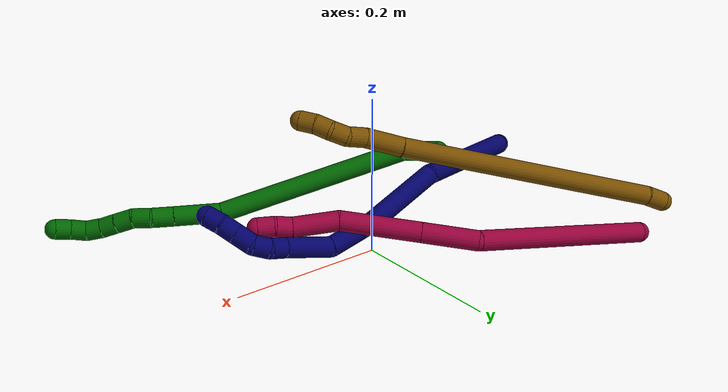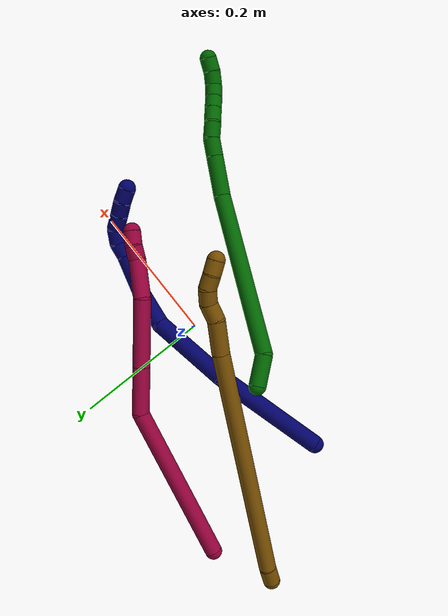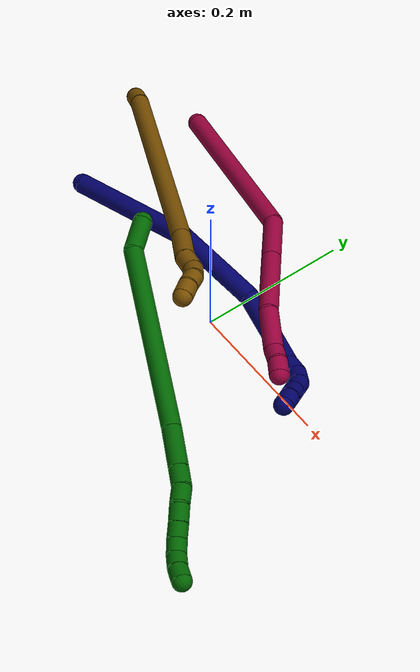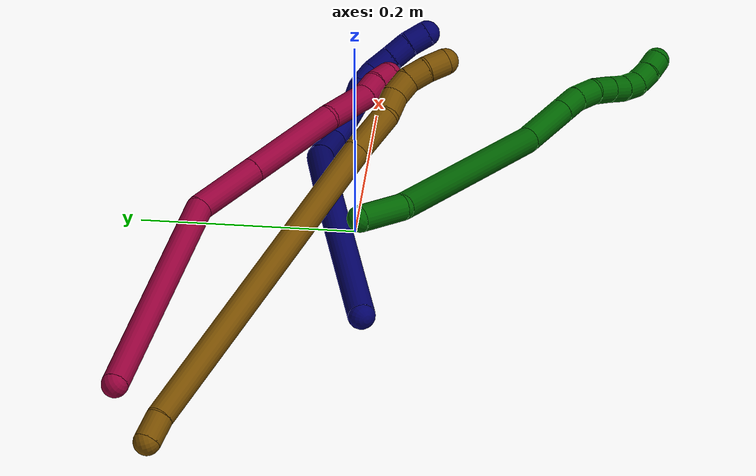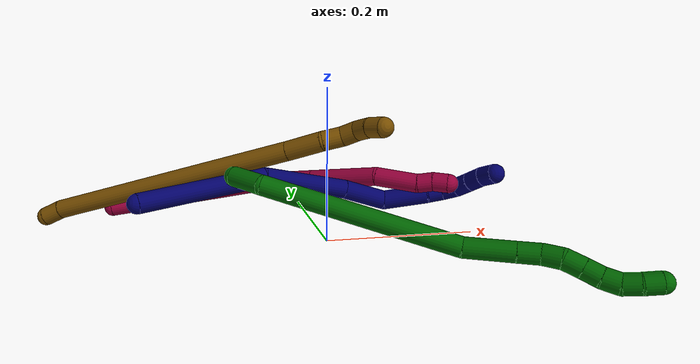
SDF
<sdf version="1.7">
 <world name="default">
  <model name="6">
   <static>0</static>
   <link name="6">
    <collision name="collision-cylinder-e_1_1_4">
     <pose>0.014573 -0.012563 -0.011935 2.33055 0.699236 1.40811</pose>
     <geometry><cylinder><radius>0.0125</radius><length>0.045282</length></cylinder></geometry>
     <surface>
      <friction><ode><mu>1.16</mu><mu2>1.16</mu2><slip1>0</slip1><slip2>0</slip2></ode></friction>
      <contact><ode><kp>1e+06</kp><kd>1</kd><max_vel>0</max_vel><min_depth>0.001</min_depth></ode></contact>
     </surface>
    </collision>
    <visual name="visual-cylinder-e_1_1_4">
     <pose>0.014573 -0.012563 -0.011935 2.33055 0.699236 1.40811</pose>
     <geometry><cylinder><radius>0.0125</radius><length>0.045282</length></cylinder></geometry>
     <material><ambient>0 0.392157 0.003922 1</ambient></material>
    </visual>
    <collision name="collision-cylinder-e_2_4_5">
     <pose>0.141217 -0.059888 -0.054962 2.30052 1.17645 1.96029</pose>
     <geometry><cylinder><radius>0.0125</radius><length>0.242779</length></cylinder></geometry>
     <surface>
      <friction><ode><mu>1.16</mu><mu2>1.16</mu2><slip1>0</slip1><slip2>0</slip2></ode></friction>
      <contact><ode><kp>1e+06</kp><kd>1</kd><max_vel>0</max_vel><min_depth>0.001</min_depth></ode></contact>
     </surface>
    </collision>
    <visual name="visual-cylinder-e_2_4_5">
     <pose>0.141217 -0.059888 -0.054962 2.30052 1.17645 1.96029</pose>
     <geometry><cylinder><radius>0.0125</radius><length>0.242779</length></cylinder></geometry>
     <material><ambient>0 0.392157 0.003922 1</ambient></material>
    </visual>
    <collision name="collision-cylinder-e_3_5_6">
     <pose>0.278238 -0.109937 -0.091325 1.90285 0.99574 1.30274</pose>
     <geometry><cylinder><radius>0.0125</radius><length>0.059459</length></cylinder></geometry>
     <surface>
      <friction><ode><mu>1.16</mu><mu2>1.16</mu2><slip1>0</slip1><slip2>0</slip2></ode></friction>
      <contact><ode><kp>1e+06</kp><kd>1</kd><max_vel>0</max_vel><min_depth>0.001</min_depth></ode></contact>
     </surface>
    </collision>
    <visual name="visual-cylinder-e_3_5_6">
     <pose>0.278238 -0.109937 -0.091325 1.90285 0.99574 1.30274</pose>
     <geometry><cylinder><radius>0.0125</radius><length>0.059459</length></cylinder></geometry>
     <material><ambient>0 0.392157 0.003922 1</ambient></material>
    </visual>
    <collision name="collision-cylinder-e_4_6_7">
     <pose>0.314346 -0.132188 -0.098976 1.90004 0.987737 1.29068</pose>
     <geometry><cylinder><radius>0.0125</radius><length>0.026739</length></cylinder></geometry>
     <surface>
      <friction><ode><mu>1.16</mu><mu2>1.16</mu2><slip1>0</slip1><slip2>0</slip2></ode></friction>
      <contact><ode><kp>1e+06</kp><kd>1</kd><max_vel>0</max_vel><min_depth>0.001</min_depth></ode></contact>
     </surface>
    </collision>
    <visual name="visual-cylinder-e_4_6_7">
     <pose>0.314346 -0.132188 -0.098976 1.90004 0.987737 1.29068</pose>
     <geometry><cylinder><radius>0.0125</radius><length>0.026739</length></cylinder></geometry>
     <material><ambient>0 0.392157 0.003922 1</ambient></material>
    </visual>
    <collision name="collision-cylinder-e_5_7_8">
     <pose>0.333976 -0.145634 -0.106085 2.20121 0.812523 1.40491</pose>
     <geometry><cylinder><radius>0.0125</radius><length>0.023331</length></cylinder></geometry>
     <surface>
      <friction><ode><mu>1.16</mu><mu2>1.16</mu2><slip1>0</slip1><slip2>0</slip2></ode></friction>
      <contact><ode><kp>1e+06</kp><kd>1</kd><max_vel>0</max_vel><min_depth>0.001</min_depth></ode></contact>
     </surface>
    </collision>
    <visual name="visual-cylinder-e_5_7_8">
     <pose>0.333976 -0.145634 -0.106085 2.20121 0.812523 1.40491</pose>
     <geometry><cylinder><radius>0.0125</radius><length>0.023331</length></cylinder></geometry>
     <material><ambient>0 0.392157 0.003922 1</ambient></material>
    </visual>
    <collision name="collision-cylinder-e_6_8_9">
     <pose>0.351487 -0.155502 -0.11642 2.59799 0.943816 2.14194</pose>
     <geometry><cylinder><radius>0.0125</radius><length>0.022332</length></cylinder></geometry>
     <surface>
      <friction><ode><mu>1.16</mu><mu2>1.16</mu2><slip1>0</slip1><slip2>0</slip2></ode></friction>
      <contact><ode><kp>1e+06</kp><kd>1</kd><max_vel>0</max_vel><min_depth>0.001</min_depth></ode></contact>
     </surface>
    </collision>
    <visual name="visual-cylinder-e_6_8_9">
     <pose>0.351487 -0.155502 -0.11642 2.59799 0.943816 2.14194</pose>
     <geometry><cylinder><radius>0.0125</radius><length>0.022332</length></cylinder></geometry>
     <material><ambient>0 0.392157 0.003922 1</ambient></material>
    </visual>
    <collision name="collision-cylinder-e_7_9_10">
     <pose>0.368472 -0.161816 -0.127414 2.64409 0.913452 2.18738</pose>
     <geometry><cylinder><radius>0.0125</radius><length>0.020066</length></cylinder></geometry>
     <surface>
      <friction><ode><mu>1.16</mu><mu2>1.16</mu2><slip1>0</slip1><slip2>0</slip2></ode></friction>
      <contact><ode><kp>1e+06</kp><kd>1</kd><max_vel>0</max_vel><min_depth>0.001</min_depth></ode></contact>
     </surface>
    </collision>
    <visual name="visual-cylinder-e_7_9_10">
     <pose>0.368472 -0.161816 -0.127414 2.64409 0.913452 2.18738</pose>
     <geometry><cylinder><radius>0.0125</radius><length>0.020066</length></cylinder></geometry>
     <material><ambient>0 0.392157 0.003922 1</ambient></material>
    </visual>
    <collision name="collision-cylinder-e_8_10_11">
     <pose>0.384549 -0.168843 -0.136941 2.36088 0.949228 1.79106</pose>
     <geometry><cylinder><radius>0.0125</radius><length>0.020012</length></cylinder></geometry>
     <surface>
      <friction><ode><mu>1.16</mu><mu2>1.16</mu2><slip1>0</slip1><slip2>0</slip2></ode></friction>
      <contact><ode><kp>1e+06</kp><kd>1</kd><max_vel>0</max_vel><min_depth>0.001</min_depth></ode></contact>
     </surface>
    </collision>
    <visual name="visual-cylinder-e_8_10_11">
     <pose>0.384549 -0.168843 -0.136941 2.36088 0.949228 1.79106</pose>
     <geometry><cylinder><radius>0.0125</radius><length>0.020012</length></cylinder></geometry>
     <material><ambient>0 0.392157 0.003922 1</ambient></material>
    </visual>
    <collision name="collision-cylinder-e_9_11_12">
     <pose>0.400117 -0.17947 -0.142546 1.79173 0.838035 1.01568</pose>
     <geometry><cylinder><radius>0.0125</radius><length>0.02</length></cylinder></geometry>
     <surface>
      <friction><ode><mu>1.16</mu><mu2>1.16</mu2><slip1>0</slip1><slip2>0</slip2></ode></friction>
      <contact><ode><kp>1e+06</kp><kd>1</kd><max_vel>0</max_vel><min_depth>0.001</min_depth></ode></contact>
     </surface>
    </collision>
    <visual name="visual-cylinder-e_9_11_12">
     <pose>0.400117 -0.17947 -0.142546 1.79173 0.838035 1.01568</pose>
     <geometry><cylinder><radius>0.0125</radius><length>0.02</length></cylinder></geometry>
     <material><ambient>0 0.392157 0.003922 1</ambient></material>
    </visual>
    <collision name="collision-cylinder-e_10_12_2">
     <pose>0.415754 -0.191714 -0.144114 1.58867 0.962126 0.976869</pose>
     <geometry><cylinder><radius>0.0125</radius><length>0.02</length></cylinder></geometry>
     <surface>
      <friction><ode><mu>1.16</mu><mu2>1.16</mu2><slip1>0</slip1><slip2>0</slip2></ode></friction>
      <contact><ode><kp>1e+06</kp><kd>1</kd><max_vel>0</max_vel><min_depth>0.001</min_depth></ode></contact>
     </surface>
    </collision>
    <visual name="visual-cylinder-e_10_12_2">
     <pose>0.415754 -0.191714 -0.144114 1.58867 0.962126 0.976869</pose>
     <geometry><cylinder><radius>0.0125</radius><length>0.02</length></cylinder></geometry>
     <material><ambient>0 0.392157 0.003922 1</ambient></material>
    </visual>
    <collision name="collision-sphere-2">
     <pose>0.423959 -0.19743 -0.144217 0 -0 0</pose>
     <geometry><sphere><radius>0.0125</radius></sphere></geometry>
     <surface>
      <friction><ode><mu>1.16</mu><mu2>1.16</mu2><slip1>0</slip1><slip2>0</slip2></ode></friction>
      <contact><ode><kp>1e+06</kp><kd>1</kd><max_vel>0</max_vel><min_depth>0.001</min_depth></ode></contact>
     </surface>
    </collision>
    <visual name="visual-sphere-2">
     <pose>0.423959 -0.19743 -0.144217 0 -0 0</pose>
     <geometry><sphere><radius>0.0125</radius></sphere></geometry>
     <material><ambient>0 0.392157 0.003922 1</ambient></material>
    </visual>
    <collision name="collision-sphere-12">
     <pose>0.40755 -0.185997 -0.144012 0 -0 0</pose>
     <geometry><sphere><radius>0.0125</radius></sphere></geometry>
     <surface>
      <friction><ode><mu>1.16</mu><mu2>1.16</mu2><slip1>0</slip1><slip2>0</slip2></ode></friction>
      <contact><ode><kp>1e+06</kp><kd>1</kd><max_vel>0</max_vel><min_depth>0.001</min_depth></ode></contact>
     </surface>
    </collision>
    <visual name="visual-sphere-12">
     <pose>0.40755 -0.185997 -0.144012 0 -0 0</pose>
     <geometry><sphere><radius>0.0125</radius></sphere></geometry>
     <material><ambient>0 0.392157 0.003922 1</ambient></material>
    </visual>
    <collision name="collision-sphere-11">
     <pose>0.392684 -0.172943 -0.14108 0 -0 0</pose>
     <geometry><sphere><radius>0.0125</radius></sphere></geometry>
     <surface>
      <friction><ode><mu>1.16</mu><mu2>1.16</mu2><slip1>0</slip1><slip2>0</slip2></ode></friction>
      <contact><ode><kp>1e+06</kp><kd>1</kd><max_vel>0</max_vel><min_depth>0.001</min_depth></ode></contact>
     </surface>
    </collision>
    <visual name="visual-sphere-11">
     <pose>0.392684 -0.172943 -0.14108 0 -0 0</pose>
     <geometry><sphere><radius>0.0125</radius></sphere></geometry>
     <material><ambient>0 0.392157 0.003922 1</ambient></material>
    </visual>
    <collision name="collision-sphere-10">
     <pose>0.376415 -0.164742 -0.132802 0 -0 0</pose>
     <geometry><sphere><radius>0.0125</radius></sphere></geometry>
     <surface>
      <friction><ode><mu>1.16</mu><mu2>1.16</mu2><slip1>0</slip1><slip2>0</slip2></ode></friction>
      <contact><ode><kp>1e+06</kp><kd>1</kd><max_vel>0</max_vel><min_depth>0.001</min_depth></ode></contact>
     </surface>
    </collision>
    <visual name="visual-sphere-10">
     <pose>0.376415 -0.164742 -0.132802 0 -0 0</pose>
     <geometry><sphere><radius>0.0125</radius></sphere></geometry>
     <material><ambient>0 0.392157 0.003922 1</ambient></material>
    </visual>
    <collision name="collision-sphere-9">
     <pose>0.36053 -0.158891 -0.122027 0 -0 0</pose>
     <geometry><sphere><radius>0.0125</radius></sphere></geometry>
     <surface>
      <friction><ode><mu>1.16</mu><mu2>1.16</mu2><slip1>0</slip1><slip2>0</slip2></ode></friction>
      <contact><ode><kp>1e+06</kp><kd>1</kd><max_vel>0</max_vel><min_depth>0.001</min_depth></ode></contact>
     </surface>
    </collision>
    <visual name="visual-sphere-9">
     <pose>0.36053 -0.158891 -0.122027 0 -0 0</pose>
     <geometry><sphere><radius>0.0125</radius></sphere></geometry>
     <material><ambient>0 0.392157 0.003922 1</ambient></material>
    </visual>
    <collision name="collision-sphere-4">
     <pose>0.029145 -0.025126 -0.023869 0 -0 0</pose>
     <geometry><sphere><radius>0.0125</radius></sphere></geometry>
     <surface>
      <friction><ode><mu>1.16</mu><mu2>1.16</mu2><slip1>0</slip1><slip2>0</slip2></ode></friction>
      <contact><ode><kp>1e+06</kp><kd>1</kd><max_vel>0</max_vel><min_depth>0.001</min_depth></ode></contact>
     </surface>
    </collision>
    <visual name="visual-sphere-4">
     <pose>0.029145 -0.025126 -0.023869 0 -0 0</pose>
     <geometry><sphere><radius>0.0125</radius></sphere></geometry>
     <material><ambient>0 0.392157 0.003922 1</ambient></material>
    </visual>
    <collision name="collision-sphere-1">
     <geometry><sphere><radius>0.0125</radius></sphere></geometry>
     <surface>
      <friction><ode><mu>1.16</mu><mu2>1.16</mu2><slip1>0</slip1><slip2>0</slip2></ode></friction>
      <contact><ode><kp>1e+06</kp><kd>1</kd><max_vel>0</max_vel><min_depth>0.001</min_depth></ode></contact>
     </surface>
    </collision>
    <visual name="visual-sphere-1">
     <geometry><sphere><radius>0.0125</radius></sphere></geometry>
     <material><ambient>0 0.392157 0.003922 1</ambient></material>
    </visual>
    <collision name="collision-sphere-8">
     <pose>0.342445 -0.152114 -0.110814 0 -0 0</pose>
     <geometry><sphere><radius>0.0125</radius></sphere></geometry>
     <surface>
      <friction><ode><mu>1.16</mu><mu2>1.16</mu2><slip1>0</slip1><slip2>0</slip2></ode></friction>
      <contact><ode><kp>1e+06</kp><kd>1</kd><max_vel>0</max_vel><min_depth>0.001</min_depth></ode></contact>
     </surface>
    </collision>
    <visual name="visual-sphere-8">
     <pose>0.342445 -0.152114 -0.110814 0 -0 0</pose>
     <geometry><sphere><radius>0.0125</radius></sphere></geometry>
     <material><ambient>0 0.392157 0.003922 1</ambient></material>
    </visual>
    <collision name="collision-sphere-5">
     <pose>0.25329 -0.094651 -0.086054 0 -0 0</pose>
     <geometry><sphere><radius>0.0125</radius></sphere></geometry>
     <surface>
      <friction><ode><mu>1.16</mu><mu2>1.16</mu2><slip1>0</slip1><slip2>0</slip2></ode></friction>
      <contact><ode><kp>1e+06</kp><kd>1</kd><max_vel>0</max_vel><min_depth>0.001</min_depth></ode></contact>
     </surface>
    </collision>
    <visual name="visual-sphere-5">
     <pose>0.25329 -0.094651 -0.086054 0 -0 0</pose>
     <geometry><sphere><radius>0.0125</radius></sphere></geometry>
     <material><ambient>0 0.392157 0.003922 1</ambient></material>
    </visual>
    <collision name="collision-sphere-6">
     <pose>0.303185 -0.125223 -0.096596 0 -0 0</pose>
     <geometry><sphere><radius>0.0125</radius></sphere></geometry>
     <surface>
      <friction><ode><mu>1.16</mu><mu2>1.16</mu2><slip1>0</slip1><slip2>0</slip2></ode></friction>
      <contact><ode><kp>1e+06</kp><kd>1</kd><max_vel>0</max_vel><min_depth>0.001</min_depth></ode></contact>
     </surface>
    </collision>
    <visual name="visual-sphere-6">
     <pose>0.303185 -0.125223 -0.096596 0 -0 0</pose>
     <geometry><sphere><radius>0.0125</radius></sphere></geometry>
     <material><ambient>0 0.392157 0.003922 1</ambient></material>
    </visual>
    <collision name="collision-sphere-7">
     <pose>0.325506 -0.139154 -0.101356 0 -0 0</pose>
     <geometry><sphere><radius>0.0125</radius></sphere></geometry>
     <surface>
      <friction><ode><mu>1.16</mu><mu2>1.16</mu2><slip1>0</slip1><slip2>0</slip2></ode></friction>
      <contact><ode><kp>1e+06</kp><kd>1</kd><max_vel>0</max_vel><min_depth>0.001</min_depth></ode></contact>
     </surface>
    </collision>
    <visual name="visual-sphere-7">
     <pose>0.325506 -0.139154 -0.101356 0 -0 0</pose>
     <geometry><sphere><radius>0.0125</radius></sphere></geometry>
     <material><ambient>0 0.392157 0.003922 1</ambient></material>
    </visual>
    <inertial>
     <pose>0.213884 -0.0922 -0.076132 0 -0 0</pose>
     <mass>0.5</mass>
     <inertia>
      <ixx>0.000314</ixx>
      <ixy>0</ixy>
      <ixz>0</ixz>
      <iyy>0.00153</iyy>
      <iyz>0</iyz>
      <izz>-0.000788</izz>
     </inertia>
    </inertial>
   </link>
   <pose>-0.12023 -0.017078 0.095733 -0.954658 0.361805 -0.030503</pose>
  </model>
  <model name="7">
   <static>0</static>
   <link name="7">
    <collision name="collision-cylinder-e_1_1_4">
     <pose>0.034333 0.008087 -0.074599 -3.03361 0.429122 -2.65537</pose>
     <geometry><cylinder><radius>0.0125</radius><length>0.165035</length></cylinder></geometry>
     <surface>
      <friction><ode><mu>1.16</mu><mu2>1.16</mu2><slip1>0</slip1><slip2>0</slip2></ode></friction>
      <contact><ode><kp>1e+06</kp><kd>1</kd><max_vel>0</max_vel><min_depth>0.001</min_depth></ode></contact>
     </surface>
    </collision>
    <visual name="visual-cylinder-e_1_1_4">
     <pose>0.034333 0.008087 -0.074599 -3.03361 0.429122 -2.65537</pose>
     <geometry><cylinder><radius>0.0125</radius><length>0.165035</length></cylinder></geometry>
     <material><ambient>0.003922 0 0.403922 1</ambient></material>
    </visual>
    <collision name="collision-cylinder-e_2_4_5">
     <pose>0.086779 0.003621 -0.202807 2.91157 0.317818 1.89247</pose>
     <geometry><cylinder><radius>0.0125</radius><length>0.115925</length></cylinder></geometry>
     <surface>
      <friction><ode><mu>1.16</mu><mu2>1.16</mu2><slip1>0</slip1><slip2>0</slip2></ode></friction>
      <contact><ode><kp>1e+06</kp><kd>1</kd><max_vel>0</max_vel><min_depth>0.001</min_depth></ode></contact>
     </surface>
    </collision>
    <visual name="visual-cylinder-e_2_4_5">
     <pose>0.086779 0.003621 -0.202807 2.91157 0.317818 1.89247</pose>
     <geometry><cylinder><radius>0.0125</radius><length>0.115925</length></cylinder></geometry>
     <material><ambient>0.003922 0 0.403922 1</ambient></material>
    </visual>
    <collision name="collision-cylinder-e_3_5_6">
     <pose>0.117987 -0.020686 -0.278226 2.64729 0.486223 1.55364</pose>
     <geometry><cylinder><radius>0.0125</radius><length>0.056046</length></cylinder></geometry>
     <surface>
      <friction><ode><mu>1.16</mu><mu2>1.16</mu2><slip1>0</slip1><slip2>0</slip2></ode></friction>
      <contact><ode><kp>1e+06</kp><kd>1</kd><max_vel>0</max_vel><min_depth>0.001</min_depth></ode></contact>
     </surface>
    </collision>
    <visual name="visual-cylinder-e_3_5_6">
     <pose>0.117987 -0.020686 -0.278226 2.64729 0.486223 1.55364</pose>
     <geometry><cylinder><radius>0.0125</radius><length>0.056046</length></cylinder></geometry>
     <material><ambient>0.003922 0 0.403922 1</ambient></material>
    </visual>
    <collision name="collision-cylinder-e_4_6_7">
     <pose>0.154639 -0.036012 -0.31705 2.93464 0.935001 2.73583</pose>
     <geometry><cylinder><radius>0.0125</radius><length>0.058556</length></cylinder></geometry>
     <surface>
      <friction><ode><mu>1.16</mu><mu2>1.16</mu2><slip1>0</slip1><slip2>0</slip2></ode></friction>
      <contact><ode><kp>1e+06</kp><kd>1</kd><max_vel>0</max_vel><min_depth>0.001</min_depth></ode></contact>
     </surface>
    </collision>
    <visual name="visual-cylinder-e_4_6_7">
     <pose>0.154639 -0.036012 -0.31705 2.93464 0.935001 2.73583</pose>
     <geometry><cylinder><radius>0.0125</radius><length>0.058556</length></cylinder></geometry>
     <material><ambient>0.003922 0 0.403922 1</ambient></material>
    </visual>
    <collision name="collision-cylinder-e_5_7_8">
     <pose>0.185713 -0.040049 -0.340908 3.07382 0.831064 2.98823</pose>
     <geometry><cylinder><radius>0.0125</radius><length>0.020351</length></cylinder></geometry>
     <surface>
      <friction><ode><mu>1.16</mu><mu2>1.16</mu2><slip1>0</slip1><slip2>0</slip2></ode></friction>
      <contact><ode><kp>1e+06</kp><kd>1</kd><max_vel>0</max_vel><min_depth>0.001</min_depth></ode></contact>
     </surface>
    </collision>
    <visual name="visual-cylinder-e_5_7_8">
     <pose>0.185713 -0.040049 -0.340908 3.07382 0.831064 2.98823</pose>
     <geometry><cylinder><radius>0.0125</radius><length>0.020351</length></cylinder></geometry>
     <material><ambient>0.003922 0 0.403922 1</ambient></material>
    </visual>
    <collision name="collision-cylinder-e_6_8_9">
     <pose>0.202922 -0.041471 -0.351349 2.8816 1.20418 2.7656</pose>
     <geometry><cylinder><radius>0.0125</radius><length>0.020767</length></cylinder></geometry>
     <surface>
      <friction><ode><mu>1.16</mu><mu2>1.16</mu2><slip1>0</slip1><slip2>0</slip2></ode></friction>
      <contact><ode><kp>1e+06</kp><kd>1</kd><max_vel>0</max_vel><min_depth>0.001</min_depth></ode></contact>
     </surface>
    </collision>
    <visual name="visual-cylinder-e_6_8_9">
     <pose>0.202922 -0.041471 -0.351349 2.8816 1.20418 2.7656</pose>
     <geometry><cylinder><radius>0.0125</radius><length>0.020767</length></cylinder></geometry>
     <material><ambient>0.003922 0 0.403922 1</ambient></material>
    </visual>
    <collision name="collision-cylinder-e_7_9_10">
     <pose>0.223965 -0.04293 -0.353596 0.356626 1.44455 0.314968</pose>
     <geometry><cylinder><radius>0.0125</radius><length>0.022881</length></cylinder></geometry>
     <surface>
      <friction><ode><mu>1.16</mu><mu2>1.16</mu2><slip1>0</slip1><slip2>0</slip2></ode></friction>
      <contact><ode><kp>1e+06</kp><kd>1</kd><max_vel>0</max_vel><min_depth>0.001</min_depth></ode></contact>
     </surface>
    </collision>
    <visual name="visual-cylinder-e_7_9_10">
     <pose>0.223965 -0.04293 -0.353596 0.356626 1.44455 0.314968</pose>
     <geometry><cylinder><radius>0.0125</radius><length>0.022881</length></cylinder></geometry>
     <material><ambient>0.003922 0 0.403922 1</ambient></material>
    </visual>
    <collision name="collision-cylinder-e_8_10_11">
     <pose>0.245405 -0.043777 -0.351225 0.324876 1.46445 0.292534</pose>
     <geometry><cylinder><radius>0.0125</radius><length>0.020296</length></cylinder></geometry>
     <surface>
      <friction><ode><mu>1.16</mu><mu2>1.16</mu2><slip1>0</slip1><slip2>0</slip2></ode></friction>
      <contact><ode><kp>1e+06</kp><kd>1</kd><max_vel>0</max_vel><min_depth>0.001</min_depth></ode></contact>
     </surface>
    </collision>
    <visual name="visual-cylinder-e_8_10_11">
     <pose>0.245405 -0.043777 -0.351225 0.324876 1.46445 0.292534</pose>
     <geometry><cylinder><radius>0.0125</radius><length>0.020296</length></cylinder></geometry>
     <material><ambient>0.003922 0 0.403922 1</ambient></material>
    </visual>
    <collision name="collision-cylinder-e_9_11_2">
     <pose>0.265265 -0.046078 -0.348729 0.924783 1.32498 0.741677</pose>
     <geometry><cylinder><radius>0.0125</radius><length>0.020143</length></cylinder></geometry>
     <surface>
      <friction><ode><mu>1.16</mu><mu2>1.16</mu2><slip1>0</slip1><slip2>0</slip2></ode></friction>
      <contact><ode><kp>1e+06</kp><kd>1</kd><max_vel>0</max_vel><min_depth>0.001</min_depth></ode></contact>
     </surface>
    </collision>
    <visual name="visual-cylinder-e_9_11_2">
     <pose>0.265265 -0.046078 -0.348729 0.924783 1.32498 0.741677</pose>
     <geometry><cylinder><radius>0.0125</radius><length>0.020143</length></cylinder></geometry>
     <material><ambient>0.003922 0 0.403922 1</ambient></material>
    </visual>
    <collision name="collision-sphere-2">
     <pose>0.275034 -0.048035 -0.347254 0 -0 0</pose>
     <geometry><sphere><radius>0.0125</radius></sphere></geometry>
     <surface>
      <friction><ode><mu>1.16</mu><mu2>1.16</mu2><slip1>0</slip1><slip2>0</slip2></ode></friction>
      <contact><ode><kp>1e+06</kp><kd>1</kd><max_vel>0</max_vel><min_depth>0.001</min_depth></ode></contact>
     </surface>
    </collision>
    <visual name="visual-sphere-2">
     <pose>0.275034 -0.048035 -0.347254 0 -0 0</pose>
     <geometry><sphere><radius>0.0125</radius></sphere></geometry>
     <material><ambient>0.003922 0 0.403922 1</ambient></material>
    </visual>
    <collision name="collision-sphere-11">
     <pose>0.255496 -0.044121 -0.350205 0 -0 0</pose>
     <geometry><sphere><radius>0.0125</radius></sphere></geometry>
     <surface>
      <friction><ode><mu>1.16</mu><mu2>1.16</mu2><slip1>0</slip1><slip2>0</slip2></ode></friction>
      <contact><ode><kp>1e+06</kp><kd>1</kd><max_vel>0</max_vel><min_depth>0.001</min_depth></ode></contact>
     </surface>
    </collision>
    <visual name="visual-sphere-11">
     <pose>0.255496 -0.044121 -0.350205 0 -0 0</pose>
     <geometry><sphere><radius>0.0125</radius></sphere></geometry>
     <material><ambient>0.003922 0 0.403922 1</ambient></material>
    </visual>
    <collision name="collision-sphere-10">
     <pose>0.235315 -0.043433 -0.352246 0 -0 0</pose>
     <geometry><sphere><radius>0.0125</radius></sphere></geometry>
     <surface>
      <friction><ode><mu>1.16</mu><mu2>1.16</mu2><slip1>0</slip1><slip2>0</slip2></ode></friction>
      <contact><ode><kp>1e+06</kp><kd>1</kd><max_vel>0</max_vel><min_depth>0.001</min_depth></ode></contact>
     </surface>
    </collision>
    <visual name="visual-sphere-10">
     <pose>0.235315 -0.043433 -0.352246 0 -0 0</pose>
     <geometry><sphere><radius>0.0125</radius></sphere></geometry>
     <material><ambient>0.003922 0 0.403922 1</ambient></material>
    </visual>
    <collision name="collision-sphere-9">
     <pose>0.212616 -0.042427 -0.354946 0 -0 0</pose>
     <geometry><sphere><radius>0.0125</radius></sphere></geometry>
     <surface>
      <friction><ode><mu>1.16</mu><mu2>1.16</mu2><slip1>0</slip1><slip2>0</slip2></ode></friction>
      <contact><ode><kp>1e+06</kp><kd>1</kd><max_vel>0</max_vel><min_depth>0.001</min_depth></ode></contact>
     </surface>
    </collision>
    <visual name="visual-sphere-9">
     <pose>0.212616 -0.042427 -0.354946 0 -0 0</pose>
     <geometry><sphere><radius>0.0125</radius></sphere></geometry>
     <material><ambient>0.003922 0 0.403922 1</ambient></material>
    </visual>
    <collision name="collision-sphere-4">
     <pose>0.068666 0.016174 -0.149197 0 -0 0</pose>
     <geometry><sphere><radius>0.0125</radius></sphere></geometry>
     <surface>
      <friction><ode><mu>1.16</mu><mu2>1.16</mu2><slip1>0</slip1><slip2>0</slip2></ode></friction>
      <contact><ode><kp>1e+06</kp><kd>1</kd><max_vel>0</max_vel><min_depth>0.001</min_depth></ode></contact>
     </surface>
    </collision>
    <visual name="visual-sphere-4">
     <pose>0.068666 0.016174 -0.149197 0 -0 0</pose>
     <geometry><sphere><radius>0.0125</radius></sphere></geometry>
     <material><ambient>0.003922 0 0.403922 1</ambient></material>
    </visual>
    <collision name="collision-sphere-1">
     <geometry><sphere><radius>0.0125</radius></sphere></geometry>
     <surface>
      <friction><ode><mu>1.16</mu><mu2>1.16</mu2><slip1>0</slip1><slip2>0</slip2></ode></friction>
      <contact><ode><kp>1e+06</kp><kd>1</kd><max_vel>0</max_vel><min_depth>0.001</min_depth></ode></contact>
     </surface>
    </collision>
    <visual name="visual-sphere-1">
     <geometry><sphere><radius>0.0125</radius></sphere></geometry>
     <material><ambient>0.003922 0 0.403922 1</ambient></material>
    </visual>
    <collision name="collision-sphere-8">
     <pose>0.193229 -0.040514 -0.347752 0 -0 0</pose>
     <geometry><sphere><radius>0.0125</radius></sphere></geometry>
     <surface>
      <friction><ode><mu>1.16</mu><mu2>1.16</mu2><slip1>0</slip1><slip2>0</slip2></ode></friction>
      <contact><ode><kp>1e+06</kp><kd>1</kd><max_vel>0</max_vel><min_depth>0.001</min_depth></ode></contact>
     </surface>
    </collision>
    <visual name="visual-sphere-8">
     <pose>0.193229 -0.040514 -0.347752 0 -0 0</pose>
     <geometry><sphere><radius>0.0125</radius></sphere></geometry>
     <material><ambient>0.003922 0 0.403922 1</ambient></material>
    </visual>
    <collision name="collision-sphere-5">
     <pose>0.104892 -0.008932 -0.256416 0 -0 0</pose>
     <geometry><sphere><radius>0.0125</radius></sphere></geometry>
     <surface>
      <friction><ode><mu>1.16</mu><mu2>1.16</mu2><slip1>0</slip1><slip2>0</slip2></ode></friction>
      <contact><ode><kp>1e+06</kp><kd>1</kd><max_vel>0</max_vel><min_depth>0.001</min_depth></ode></contact>
     </surface>
    </collision>
    <visual name="visual-sphere-5">
     <pose>0.104892 -0.008932 -0.256416 0 -0 0</pose>
     <geometry><sphere><radius>0.0125</radius></sphere></geometry>
     <material><ambient>0.003922 0 0.403922 1</ambient></material>
    </visual>
    <collision name="collision-sphere-6">
     <pose>0.131082 -0.03244 -0.300035 0 -0 0</pose>
     <geometry><sphere><radius>0.0125</radius></sphere></geometry>
     <surface>
      <friction><ode><mu>1.16</mu><mu2>1.16</mu2><slip1>0</slip1><slip2>0</slip2></ode></friction>
      <contact><ode><kp>1e+06</kp><kd>1</kd><max_vel>0</max_vel><min_depth>0.001</min_depth></ode></contact>
     </surface>
    </collision>
    <visual name="visual-sphere-6">
     <pose>0.131082 -0.03244 -0.300035 0 -0 0</pose>
     <geometry><sphere><radius>0.0125</radius></sphere></geometry>
     <material><ambient>0.003922 0 0.403922 1</ambient></material>
    </visual>
    <collision name="collision-sphere-7">
     <pose>0.178196 -0.039585 -0.334065 0 -0 0</pose>
     <geometry><sphere><radius>0.0125</radius></sphere></geometry>
     <surface>
      <friction><ode><mu>1.16</mu><mu2>1.16</mu2><slip1>0</slip1><slip2>0</slip2></ode></friction>
      <contact><ode><kp>1e+06</kp><kd>1</kd><max_vel>0</max_vel><min_depth>0.001</min_depth></ode></contact>
     </surface>
    </collision>
    <visual name="visual-sphere-7">
     <pose>0.178196 -0.039585 -0.334065 0 -0 0</pose>
     <geometry><sphere><radius>0.0125</radius></sphere></geometry>
     <material><ambient>0.003922 0 0.403922 1</ambient></material>
    </visual>
    <inertial>
     <pose>0.109672 -0.011978 -0.212917 0 -0 0</pose>
     <mass>0.5</mass>
     <inertia>
      <ixx>-0.000357</ixx>
      <ixy>0</ixy>
      <ixz>0</ixz>
      <iyy>0.000398</iyy>
      <iyz>0</iyz>
      <izz>-0.000256</izz>
     </inertia>
    </inertial>
   </link>
   <pose>-0.236838 -0.029769 0.070911 1.31732 -0.517078 -0.854148</pose>
  </model>
  <model name="8">
   <static>0</static>
   <link name="8">
    <collision name="collision-cylinder-e_1_1_4">
     <pose>0.088914 -0.075961 0.017224 1.34782 0.851394 0.694864</pose>
     <geometry><cylinder><radius>0.0125</radius><length>0.23641</length></cylinder></geometry>
     <surface>
      <friction><ode><mu>1.16</mu><mu2>1.16</mu2><slip1>0</slip1><slip2>0</slip2></ode></friction>
      <contact><ode><kp>1e+06</kp><kd>1</kd><max_vel>0</max_vel><min_depth>0.001</min_depth></ode></contact>
     </surface>
    </collision>
    <visual name="visual-cylinder-e_1_1_4">
     <pose>0.088914 -0.075961 0.017224 1.34782 0.851394 0.694864</pose>
     <geometry><cylinder><radius>0.0125</radius><length>0.23641</length></cylinder></geometry>
     <material><ambient>0.584314 0 0.227451 1</ambient></material>
    </visual>
    <collision name="collision-cylinder-e_2_4_5">
     <pose>0.192302 -0.178519 0.050614 1.02466 0.435299 0.247491</pose>
     <geometry><cylinder><radius>0.0125</radius><length>0.068651</length></cylinder></geometry>
     <surface>
      <friction><ode><mu>1.16</mu><mu2>1.16</mu2><slip1>0</slip1><slip2>0</slip2></ode></friction>
      <contact><ode><kp>1e+06</kp><kd>1</kd><max_vel>0</max_vel><min_depth>0.001</min_depth></ode></contact>
     </surface>
    </collision>
    <visual name="visual-cylinder-e_2_4_5">
     <pose>0.192302 -0.178519 0.050614 1.02466 0.435299 0.247491</pose>
     <geometry><cylinder><radius>0.0125</radius><length>0.068651</length></cylinder></geometry>
     <material><ambient>0.584314 0 0.227451 1</ambient></material>
    </visual>
    <collision name="collision-cylinder-e_3_5_6">
     <pose>0.227432 -0.243017 0.089652 1.02783 0.43658 0.249147</pose>
     <geometry><cylinder><radius>0.0125</radius><length>0.0977</length></cylinder></geometry>
     <surface>
      <friction><ode><mu>1.16</mu><mu2>1.16</mu2><slip1>0</slip1><slip2>0</slip2></ode></friction>
      <contact><ode><kp>1e+06</kp><kd>1</kd><max_vel>0</max_vel><min_depth>0.001</min_depth></ode></contact>
     </surface>
    </collision>
    <visual name="visual-cylinder-e_3_5_6">
     <pose>0.227432 -0.243017 0.089652 1.02783 0.43658 0.249147</pose>
     <geometry><cylinder><radius>0.0125</radius><length>0.0977</length></cylinder></geometry>
     <material><ambient>0.584314 0 0.227451 1</ambient></material>
    </visual>
    <collision name="collision-cylinder-e_4_6_7">
     <pose>0.259765 -0.305877 0.118295 1.34355 0.427705 0.341997</pose>
     <geometry><cylinder><radius>0.0125</radius><length>0.056306</length></cylinder></geometry>
     <surface>
      <friction><ode><mu>1.16</mu><mu2>1.16</mu2><slip1>0</slip1><slip2>0</slip2></ode></friction>
      <contact><ode><kp>1e+06</kp><kd>1</kd><max_vel>0</max_vel><min_depth>0.001</min_depth></ode></contact>
     </surface>
    </collision>
    <visual name="visual-cylinder-e_4_6_7">
     <pose>0.259765 -0.305877 0.118295 1.34355 0.427705 0.341997</pose>
     <geometry><cylinder><radius>0.0125</radius><length>0.056306</length></cylinder></geometry>
     <material><ambient>0.584314 0 0.227451 1</ambient></material>
    </visual>
    <collision name="collision-cylinder-e_5_7_8">
     <pose>0.277799 -0.338171 0.127186 1.16875 0.673141 0.454848</pose>
     <geometry><cylinder><radius>0.0125</radius><length>0.020391</length></cylinder></geometry>
     <surface>
      <friction><ode><mu>1.16</mu><mu2>1.16</mu2><slip1>0</slip1><slip2>0</slip2></ode></friction>
      <contact><ode><kp>1e+06</kp><kd>1</kd><max_vel>0</max_vel><min_depth>0.001</min_depth></ode></contact>
     </surface>
    </collision>
    <visual name="visual-cylinder-e_5_7_8">
     <pose>0.277799 -0.338171 0.127186 1.16875 0.673141 0.454848</pose>
     <geometry><cylinder><radius>0.0125</radius><length>0.020391</length></cylinder></geometry>
     <material><ambient>0.584314 0 0.227451 1</ambient></material>
    </visual>
    <collision name="collision-cylinder-e_6_8_2">
     <pose>0.288596 -0.354382 0.132952 1.281 0.447146 0.335741</pose>
     <geometry><cylinder><radius>0.0125</radius><length>0.020543</length></cylinder></geometry>
     <surface>
      <friction><ode><mu>1.16</mu><mu2>1.16</mu2><slip1>0</slip1><slip2>0</slip2></ode></friction>
      <contact><ode><kp>1e+06</kp><kd>1</kd><max_vel>0</max_vel><min_depth>0.001</min_depth></ode></contact>
     </surface>
    </collision>
    <visual name="visual-cylinder-e_6_8_2">
     <pose>0.288596 -0.354382 0.132952 1.281 0.447146 0.335741</pose>
     <geometry><cylinder><radius>0.0125</radius><length>0.020543</length></cylinder></geometry>
     <material><ambient>0.584314 0 0.227451 1</ambient></material>
    </visual>
    <collision name="collision-sphere-2">
     <pose>0.293038 -0.363258 0.135598 0 -0 0</pose>
     <geometry><sphere><radius>0.0125</radius></sphere></geometry>
     <surface>
      <friction><ode><mu>1.16</mu><mu2>1.16</mu2><slip1>0</slip1><slip2>0</slip2></ode></friction>
      <contact><ode><kp>1e+06</kp><kd>1</kd><max_vel>0</max_vel><min_depth>0.001</min_depth></ode></contact>
     </surface>
    </collision>
    <visual name="visual-sphere-2">
     <pose>0.293038 -0.363258 0.135598 0 -0 0</pose>
     <geometry><sphere><radius>0.0125</radius></sphere></geometry>
     <material><ambient>0.584314 0 0.227451 1</ambient></material>
    </visual>
    <collision name="collision-sphere-4">
     <pose>0.177828 -0.151922 0.034448 0 -0 0</pose>
     <geometry><sphere><radius>0.0125</radius></sphere></geometry>
     <surface>
      <friction><ode><mu>1.16</mu><mu2>1.16</mu2><slip1>0</slip1><slip2>0</slip2></ode></friction>
      <contact><ode><kp>1e+06</kp><kd>1</kd><max_vel>0</max_vel><min_depth>0.001</min_depth></ode></contact>
     </surface>
    </collision>
    <visual name="visual-sphere-4">
     <pose>0.177828 -0.151922 0.034448 0 -0 0</pose>
     <geometry><sphere><radius>0.0125</radius></sphere></geometry>
     <material><ambient>0.584314 0 0.227451 1</ambient></material>
    </visual>
    <collision name="collision-sphere-1">
     <geometry><sphere><radius>0.0125</radius></sphere></geometry>
     <surface>
      <friction><ode><mu>1.16</mu><mu2>1.16</mu2><slip1>0</slip1><slip2>0</slip2></ode></friction>
      <contact><ode><kp>1e+06</kp><kd>1</kd><max_vel>0</max_vel><min_depth>0.001</min_depth></ode></contact>
     </surface>
    </collision>
    <visual name="visual-sphere-1">
     <geometry><sphere><radius>0.0125</radius></sphere></geometry>
     <material><ambient>0.584314 0 0.227451 1</ambient></material>
    </visual>
    <collision name="collision-sphere-8">
     <pose>0.284155 -0.345507 0.130305 0 -0 0</pose>
     <geometry><sphere><radius>0.0125</radius></sphere></geometry>
     <surface>
      <friction><ode><mu>1.16</mu><mu2>1.16</mu2><slip1>0</slip1><slip2>0</slip2></ode></friction>
      <contact><ode><kp>1e+06</kp><kd>1</kd><max_vel>0</max_vel><min_depth>0.001</min_depth></ode></contact>
     </surface>
    </collision>
    <visual name="visual-sphere-8">
     <pose>0.284155 -0.345507 0.130305 0 -0 0</pose>
     <geometry><sphere><radius>0.0125</radius></sphere></geometry>
     <material><ambient>0.584314 0 0.227451 1</ambient></material>
    </visual>
    <collision name="collision-sphere-5">
     <pose>0.206776 -0.205116 0.066779 0 -0 0</pose>
     <geometry><sphere><radius>0.0125</radius></sphere></geometry>
     <surface>
      <friction><ode><mu>1.16</mu><mu2>1.16</mu2><slip1>0</slip1><slip2>0</slip2></ode></friction>
      <contact><ode><kp>1e+06</kp><kd>1</kd><max_vel>0</max_vel><min_depth>0.001</min_depth></ode></contact>
     </surface>
    </collision>
    <visual name="visual-sphere-5">
     <pose>0.206776 -0.205116 0.066779 0 -0 0</pose>
     <geometry><sphere><radius>0.0125</radius></sphere></geometry>
     <material><ambient>0.584314 0 0.227451 1</ambient></material>
    </visual>
    <collision name="collision-sphere-6">
     <pose>0.248088 -0.280918 0.112524 0 -0 0</pose>
     <geometry><sphere><radius>0.0125</radius></sphere></geometry>
     <surface>
      <friction><ode><mu>1.16</mu><mu2>1.16</mu2><slip1>0</slip1><slip2>0</slip2></ode></friction>
      <contact><ode><kp>1e+06</kp><kd>1</kd><max_vel>0</max_vel><min_depth>0.001</min_depth></ode></contact>
     </surface>
    </collision>
    <visual name="visual-sphere-6">
     <pose>0.248088 -0.280918 0.112524 0 -0 0</pose>
     <geometry><sphere><radius>0.0125</radius></sphere></geometry>
     <material><ambient>0.584314 0 0.227451 1</ambient></material>
    </visual>
    <collision name="collision-sphere-7">
     <pose>0.271443 -0.330835 0.124067 0 -0 0</pose>
     <geometry><sphere><radius>0.0125</radius></sphere></geometry>
     <surface>
      <friction><ode><mu>1.16</mu><mu2>1.16</mu2><slip1>0</slip1><slip2>0</slip2></ode></friction>
      <contact><ode><kp>1e+06</kp><kd>1</kd><max_vel>0</max_vel><min_depth>0.001</min_depth></ode></contact>
     </surface>
    </collision>
    <visual name="visual-sphere-7">
     <pose>0.271443 -0.330835 0.124067 0 -0 0</pose>
     <geometry><sphere><radius>0.0125</radius></sphere></geometry>
     <material><ambient>0.584314 0 0.227451 1</ambient></material>
    </visual>
    <inertial>
     <pose>0.165323 -0.170709 0.056582 0 -0 0</pose>
     <mass>0.5</mass>
     <inertia>
      <ixx>0.001199</ixx>
      <ixy>0</ixy>
      <ixz>0</ixz>
      <iyy>0.001254</iyy>
      <iyz>0</iyz>
      <izz>-6.3e-05</izz>
     </inertia>
    </inertial>
   </link>
   <pose>-0.278712 0.186042 0.011496 0.644819 -0.556308 0.450275</pose>
  </model>
  <model name="12">
   <static>0</static>
   <link name="12">
    <collision name="collision-cylinder-e_1_1_4">
     <pose>0.005025 0.009411 0.007255 -0.914077 0.400052 -0.198741</pose>
     <geometry><cylinder><radius>0.0125</radius><length>0.025803</length></cylinder></geometry>
     <surface>
      <friction><ode><mu>1.16</mu><mu2>1.16</mu2><slip1>0</slip1><slip2>0</slip2></ode></friction>
      <contact><ode><kp>1e+06</kp><kd>1</kd><max_vel>0</max_vel><min_depth>0.001</min_depth></ode></contact>
     </surface>
    </collision>
    <visual name="visual-cylinder-e_1_1_4">
     <pose>0.005025 0.009411 0.007255 -0.914077 0.400052 -0.198741</pose>
     <geometry><cylinder><radius>0.0125</radius><length>0.025803</length></cylinder></geometry>
     <material><ambient>0.466667 0.301961 0 1</ambient></material>
    </visual>
    <collision name="collision-cylinder-e_2_4_5">
     <pose>0.096795 0.122369 0.117704 -0.7871 0.53554 -0.226856</pose>
     <geometry><cylinder><radius>0.0125</radius><length>0.339975</length></cylinder></geometry>
     <surface>
      <friction><ode><mu>1.16</mu><mu2>1.16</mu2><slip1>0</slip1><slip2>0</slip2></ode></friction>
      <contact><ode><kp>1e+06</kp><kd>1</kd><max_vel>0</max_vel><min_depth>0.001</min_depth></ode></contact>
     </surface>
    </collision>
    <visual name="visual-cylinder-e_2_4_5">
     <pose>0.096795 0.122369 0.117704 -0.7871 0.53554 -0.226856</pose>
     <geometry><cylinder><radius>0.0125</radius><length>0.339975</length></cylinder></geometry>
     <material><ambient>0.466667 0.301961 0 1</ambient></material>
    </visual>
    <collision name="collision-cylinder-e_3_5_6">
     <pose>0.19472 0.239884 0.236874 -0.718502 0.484861 -0.185211</pose>
     <geometry><cylinder><radius>0.0125</radius><length>0.047973</length></cylinder></geometry>
     <surface>
      <friction><ode><mu>1.16</mu><mu2>1.16</mu2><slip1>0</slip1><slip2>0</slip2></ode></friction>
      <contact><ode><kp>1e+06</kp><kd>1</kd><max_vel>0</max_vel><min_depth>0.001</min_depth></ode></contact>
     </surface>
    </collision>
    <visual name="visual-cylinder-e_3_5_6">
     <pose>0.19472 0.239884 0.236874 -0.718502 0.484861 -0.185211</pose>
     <geometry><cylinder><radius>0.0125</radius><length>0.047973</length></cylinder></geometry>
     <material><ambient>0.466667 0.301961 0 1</ambient></material>
    </visual>
    <collision name="collision-cylinder-e_4_6_7">
     <pose>0.213314 0.262577 0.258045 -1.03365 0.630708 -0.366677</pose>
     <geometry><cylinder><radius>0.0125</radius><length>0.025143</length></cylinder></geometry>
     <surface>
      <friction><ode><mu>1.16</mu><mu2>1.16</mu2><slip1>0</slip1><slip2>0</slip2></ode></friction>
      <contact><ode><kp>1e+06</kp><kd>1</kd><max_vel>0</max_vel><min_depth>0.001</min_depth></ode></contact>
     </surface>
    </collision>
    <visual name="visual-cylinder-e_4_6_7">
     <pose>0.213314 0.262577 0.258045 -1.03365 0.630708 -0.366677</pose>
     <geometry><cylinder><radius>0.0125</radius><length>0.025143</length></cylinder></geometry>
     <material><ambient>0.466667 0.301961 0 1</ambient></material>
    </visual>
    <collision name="collision-cylinder-e_5_7_8">
     <pose>0.224631 0.277503 0.270769 -0.689114 0.380694 -0.138075</pose>
     <geometry><cylinder><radius>0.0125</radius><length>0.021016</length></cylinder></geometry>
     <surface>
      <friction><ode><mu>1.16</mu><mu2>1.16</mu2><slip1>0</slip1><slip2>0</slip2></ode></friction>
      <contact><ode><kp>1e+06</kp><kd>1</kd><max_vel>0</max_vel><min_depth>0.001</min_depth></ode></contact>
     </surface>
    </collision>
    <visual name="visual-cylinder-e_5_7_8">
     <pose>0.224631 0.277503 0.270769 -0.689114 0.380694 -0.138075</pose>
     <geometry><cylinder><radius>0.0125</radius><length>0.021016</length></cylinder></geometry>
     <material><ambient>0.466667 0.301961 0 1</ambient></material>
    </visual>
    <collision name="collision-cylinder-e_6_8_9">
     <pose>0.231402 0.286551 0.287472 -0.300741 0.290006 -0.044243</pose>
     <geometry><cylinder><radius>0.0125</radius><length>0.020047</length></cylinder></geometry>
     <surface>
      <friction><ode><mu>1.16</mu><mu2>1.16</mu2><slip1>0</slip1><slip2>0</slip2></ode></friction>
      <contact><ode><kp>1e+06</kp><kd>1</kd><max_vel>0</max_vel><min_depth>0.001</min_depth></ode></contact>
     </surface>
    </collision>
    <visual name="visual-cylinder-e_6_8_9">
     <pose>0.231402 0.286551 0.287472 -0.300741 0.290006 -0.044243</pose>
     <geometry><cylinder><radius>0.0125</radius><length>0.020047</length></cylinder></geometry>
     <material><ambient>0.466667 0.301961 0 1</ambient></material>
    </visual>
    <collision name="collision-cylinder-e_7_9_2">
     <pose>0.238657 0.291285 0.305456 -0.211127 0.453329 -0.048864</pose>
     <geometry><cylinder><radius>0.0125</radius><length>0.020044</length></cylinder></geometry>
     <surface>
      <friction><ode><mu>1.16</mu><mu2>1.16</mu2><slip1>0</slip1><slip2>0</slip2></ode></friction>
      <contact><ode><kp>1e+06</kp><kd>1</kd><max_vel>0</max_vel><min_depth>0.001</min_depth></ode></contact>
     </surface>
    </collision>
    <visual name="visual-cylinder-e_7_9_2">
     <pose>0.238657 0.291285 0.305456 -0.211127 0.453329 -0.048864</pose>
     <geometry><cylinder><radius>0.0125</radius><length>0.020044</length></cylinder></geometry>
     <material><ambient>0.466667 0.301961 0 1</ambient></material>
    </visual>
    <collision name="collision-sphere-2">
     <pose>0.243047 0.293173 0.314265 0 -0 0</pose>
     <geometry><sphere><radius>0.0125</radius></sphere></geometry>
     <surface>
      <friction><ode><mu>1.16</mu><mu2>1.16</mu2><slip1>0</slip1><slip2>0</slip2></ode></friction>
      <contact><ode><kp>1e+06</kp><kd>1</kd><max_vel>0</max_vel><min_depth>0.001</min_depth></ode></contact>
     </surface>
    </collision>
    <visual name="visual-sphere-2">
     <pose>0.243047 0.293173 0.314265 0 -0 0</pose>
     <geometry><sphere><radius>0.0125</radius></sphere></geometry>
     <material><ambient>0.466667 0.301961 0 1</ambient></material>
    </visual>
    <collision name="collision-sphere-9">
     <pose>0.234268 0.289397 0.296646 0 -0 0</pose>
     <geometry><sphere><radius>0.0125</radius></sphere></geometry>
     <surface>
      <friction><ode><mu>1.16</mu><mu2>1.16</mu2><slip1>0</slip1><slip2>0</slip2></ode></friction>
      <contact><ode><kp>1e+06</kp><kd>1</kd><max_vel>0</max_vel><min_depth>0.001</min_depth></ode></contact>
     </surface>
    </collision>
    <visual name="visual-sphere-9">
     <pose>0.234268 0.289397 0.296646 0 -0 0</pose>
     <geometry><sphere><radius>0.0125</radius></sphere></geometry>
     <material><ambient>0.466667 0.301961 0 1</ambient></material>
    </visual>
    <collision name="collision-sphere-4">
     <pose>0.010049 0.018822 0.014509 0 -0 0</pose>
     <geometry><sphere><radius>0.0125</radius></sphere></geometry>
     <surface>
      <friction><ode><mu>1.16</mu><mu2>1.16</mu2><slip1>0</slip1><slip2>0</slip2></ode></friction>
      <contact><ode><kp>1e+06</kp><kd>1</kd><max_vel>0</max_vel><min_depth>0.001</min_depth></ode></contact>
     </surface>
    </collision>
    <visual name="visual-sphere-4">
     <pose>0.010049 0.018822 0.014509 0 -0 0</pose>
     <geometry><sphere><radius>0.0125</radius></sphere></geometry>
     <material><ambient>0.466667 0.301961 0 1</ambient></material>
    </visual>
    <collision name="collision-sphere-1">
     <geometry><sphere><radius>0.0125</radius></sphere></geometry>
     <surface>
      <friction><ode><mu>1.16</mu><mu2>1.16</mu2><slip1>0</slip1><slip2>0</slip2></ode></friction>
      <contact><ode><kp>1e+06</kp><kd>1</kd><max_vel>0</max_vel><min_depth>0.001</min_depth></ode></contact>
     </surface>
    </collision>
    <visual name="visual-sphere-1">
     <geometry><sphere><radius>0.0125</radius></sphere></geometry>
     <material><ambient>0.466667 0.301961 0 1</ambient></material>
    </visual>
    <collision name="collision-sphere-8">
     <pose>0.228536 0.283706 0.278299 0 -0 0</pose>
     <geometry><sphere><radius>0.0125</radius></sphere></geometry>
     <surface>
      <friction><ode><mu>1.16</mu><mu2>1.16</mu2><slip1>0</slip1><slip2>0</slip2></ode></friction>
      <contact><ode><kp>1e+06</kp><kd>1</kd><max_vel>0</max_vel><min_depth>0.001</min_depth></ode></contact>
     </surface>
    </collision>
    <visual name="visual-sphere-8">
     <pose>0.228536 0.283706 0.278299 0 -0 0</pose>
     <geometry><sphere><radius>0.0125</radius></sphere></geometry>
     <material><ambient>0.466667 0.301961 0 1</ambient></material>
    </visual>
    <collision name="collision-sphere-5">
     <pose>0.18354 0.225915 0.220898 0 -0 0</pose>
     <geometry><sphere><radius>0.0125</radius></sphere></geometry>
     <surface>
      <friction><ode><mu>1.16</mu><mu2>1.16</mu2><slip1>0</slip1><slip2>0</slip2></ode></friction>
      <contact><ode><kp>1e+06</kp><kd>1</kd><max_vel>0</max_vel><min_depth>0.001</min_depth></ode></contact>
     </surface>
    </collision>
    <visual name="visual-sphere-5">
     <pose>0.18354 0.225915 0.220898 0 -0 0</pose>
     <geometry><sphere><radius>0.0125</radius></sphere></geometry>
     <material><ambient>0.466667 0.301961 0 1</ambient></material>
    </visual>
    <collision name="collision-sphere-6">
     <pose>0.2059 0.253854 0.25285 0 -0 0</pose>
     <geometry><sphere><radius>0.0125</radius></sphere></geometry>
     <surface>
      <friction><ode><mu>1.16</mu><mu2>1.16</mu2><slip1>0</slip1><slip2>0</slip2></ode></friction>
      <contact><ode><kp>1e+06</kp><kd>1</kd><max_vel>0</max_vel><min_depth>0.001</min_depth></ode></contact>
     </surface>
    </collision>
    <visual name="visual-sphere-6">
     <pose>0.2059 0.253854 0.25285 0 -0 0</pose>
     <geometry><sphere><radius>0.0125</radius></sphere></geometry>
     <material><ambient>0.466667 0.301961 0 1</ambient></material>
    </visual>
    <collision name="collision-sphere-7">
     <pose>0.220727 0.2713 0.26324 0 -0 0</pose>
     <geometry><sphere><radius>0.0125</radius></sphere></geometry>
     <surface>
      <friction><ode><mu>1.16</mu><mu2>1.16</mu2><slip1>0</slip1><slip2>0</slip2></ode></friction>
      <contact><ode><kp>1e+06</kp><kd>1</kd><max_vel>0</max_vel><min_depth>0.001</min_depth></ode></contact>
     </surface>
    </collision>
    <visual name="visual-sphere-7">
     <pose>0.220727 0.2713 0.26324 0 -0 0</pose>
     <geometry><sphere><radius>0.0125</radius></sphere></geometry>
     <material><ambient>0.466667 0.301961 0 1</ambient></material>
    </visual>
    <inertial>
     <pose>0.123771 0.15474 0.151262 0 -0 0</pose>
     <mass>0.5</mass>
     <inertia>
      <ixx>0.002153</ixx>
      <ixy>0</ixy>
      <ixz>0</ixz>
      <iyy>0.001928</iyy>
      <iyz>0</iyz>
      <izz>-0.003677</izz>
     </inertia>
    </inertial>
   </link>
   <pose>-0.366016 0.145639 0.014214 1.16635 0.695641 -0.117589</pose>
  </model>
 </world>
</sdf>
